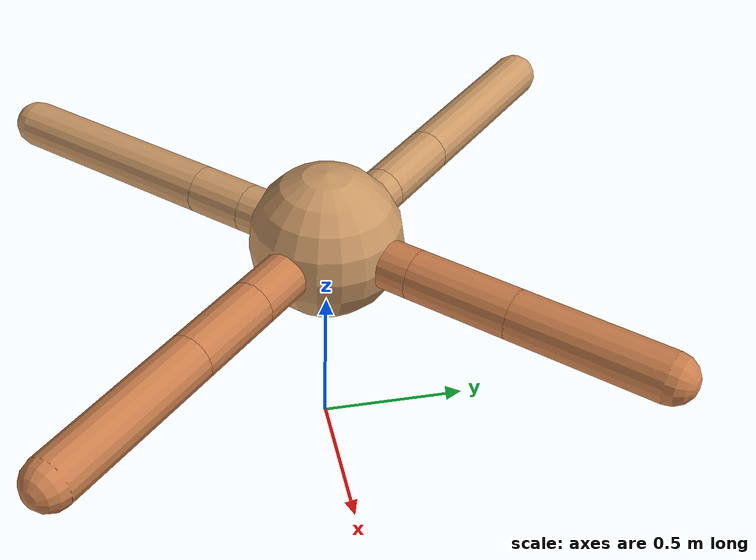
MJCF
<mujoco model="ant">
  <compiler angle="degree" coordinate="local" inertiafromgeom="true" />
  <option integrator="RK4" timestep="0.01" />
  <custom>
    <numeric data="0.0 0.0 0.55 1.0 0.0 0.0 0.0 0.0 1.0 0.0 -1.0 0.0 -1.0 0.0 1.0" name="init_qpos" />
  </custom>
  <default>
    <joint armature="1" damping="1" limited="true" />
    <geom conaffinity="0" condim="3" density="5.0" friction="1.5 0.1 0.1" margin="0.01" rgba="0.8 0.6 0.4 1" />
  </default>
  <worldbody>
    <body name="torso" pos="0 0 0.75">
      <geom name="torso_geom" pos="0 0 0" size="0.25" type="sphere" />

      <body name="front_left_leg" pos="0 0 0">
        <geom fromto="0.0 0.0 0.0 0.23272137213715222 0.23272137213715222 0.0" name="aux_1_geom" size="0.08" type="capsule" rgba=".8 .5 .3 1" />
        <body name="aux_1" pos="0.23272137213715222 0.23272137213715222 0.0">
          <joint axis="0 0 1" name="hip_1" pos="0.0 0.0 0.0" range="-40 40" type="hinge" />
          <geom fromto="0.0 0.0 0.0 0.23875764327709392 0.23875764327709392 0.0" name="left_leg_geom" size="0.08" type="capsule" rgba=".8 .5 .3 1" />
          <body pos="0.23875764327709392 0.23875764327709392 0.0" name="front_left_foot">
            <joint axis="-1 1 0" name="ankle_1" pos="0.0 0.0 0.0" range="30 100" type="hinge" />
            <geom fromto="0.0 0.0 0.0 0.3446617255364468 0.3446617255364468 0.0" name="left_ankle_geom" size="0.08" type="capsule" rgba=".8 .5 .3 1" />
          </body>
        </body>
      </body>
      <body name="front_right_leg" pos="0 0 0">
        <geom fromto="0.0 0.0 0.0 -0.23918678258841353 0.23918678258841353 0.0" name="aux_2_geom" size="0.08" type="capsule" />
        <body name="aux_2" pos="-0.23918678258841353 0.23918678258841353 0.0">
          <joint axis="0 0 1" name="hip_2" pos="0.0 0.0 0.0" range="-40 40" type="hinge" />
          <geom fromto="0.0 0.0 0.0 -0.20459362430617134 0.20459362430617134 0.0" name="right_leg_geom" size="0.08" type="capsule" />
          <body pos="-0.20459362430617134 0.20459362430617134 0.0" name="front_right_foot">
            <joint axis="1 1 0" name="ankle_2" pos="0.0 0.0 0.0" range="-100 -30" type="hinge" />
            <geom fromto="0.0 0.0 0.0 -0.4745632596054808 0.4745632596054808 0.0" name="right_ankle_geom" size="0.08" type="capsule" />
          </body>
        </body>
      </body>
      <body name="left_back_leg" pos="0 0 0">
        <geom fromto="0.0 0.0 0.0 -0.21723406884404653 -0.21723406884404653 0.0" name="aux_3_geom" size="0.08" type="capsule" />
        <body name="aux_3" pos="-0.21723406884404653 -0.21723406884404653 0.0">
          <joint axis="0 0 1" name="hip_3" pos="0.0 0.0 0.0" range="-40 40" type="hinge" />
          <geom fromto="0.0 0.0 0.0 -0.13819258581885205 -0.13819258581885205 0.0" name="back_leg_geom" size="0.08" type="capsule" />
          <body pos="-0.13819258581885205 -0.13819258581885205 0.0" name="left_back_foot">
            <joint axis="-1 1 0" name="ankle_3" pos="0.0 0.0 0.0" range="-100 -30" type="hinge" />
            <geom fromto="0.0 0.0 0.0 -0.5357708033071354 -0.5357708033071354 0.0" name="third_ankle_geom" size="0.08" type="capsule" />
          </body>
        </body>
      </body>
      <body name="right_back_leg" pos="0 0 0">
        <geom fromto="0.0 0.0 0.0 0.2849715982616765 -0.2849715982616765 0.0" name="aux_4_geom" size="0.08" type="capsule" rgba=".8 .5 .3 1" />
        <body name="aux_4" pos="0.2849715982616765 -0.2849715982616765 0.0">
          <joint axis="0 0 1" name="hip_4" pos="0.0 0.0 0.0" range="-40 40" type="hinge" />
          <geom fromto="0.0 0.0 0.0 0.20436026998045453 -0.20436026998045453 0.0" name="rightback_leg_geom" size="0.08" type="capsule" rgba=".8 .5 .3 1" />
          <body pos="0.20436026998045453 -0.20436026998045453 0.0" name="right_back_foot">
            <joint axis="1 1 0" name="ankle_4" pos="0.0 0.0 0.0" range="30 100" type="hinge" />
            <geom fromto="0.0 0.0 0.0 0.40036244780230207 -0.40036244780230207 0.0" name="fourth_ankle_geom" size="0.08" type="capsule" rgba=".8 .5 .3 1" />
          </body>
        </body>
      </body>
    </body>
  </worldbody>
  <actuator>
    <motor ctrllimited="true" ctrlrange="-1.0 1.0" joint="hip_4" gear="150" />
    <motor ctrllimited="true" ctrlrange="-1.0 1.0" joint="ankle_4" gear="150" />
    <motor ctrllimited="true" ctrlrange="-1.0 1.0" joint="hip_1" gear="150" />
    <motor ctrllimited="true" ctrlrange="-1.0 1.0" joint="ankle_1" gear="150" />
    <motor ctrllimited="true" ctrlrange="-1.0 1.0" joint="hip_2" gear="150" />
    <motor ctrllimited="true" ctrlrange="-1.0 1.0" joint="ankle_2" gear="150" />
    <motor ctrllimited="true" ctrlrange="-1.0 1.0" joint="hip_3" gear="150" />
    <motor ctrllimited="true" ctrlrange="-1.0 1.0" joint="ankle_3" gear="150" />
  </actuator>
</mujoco>
